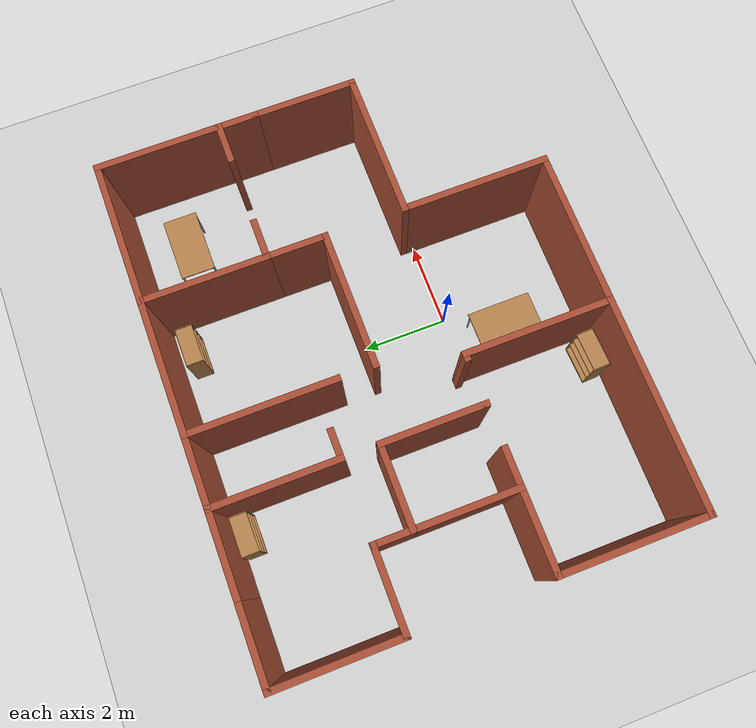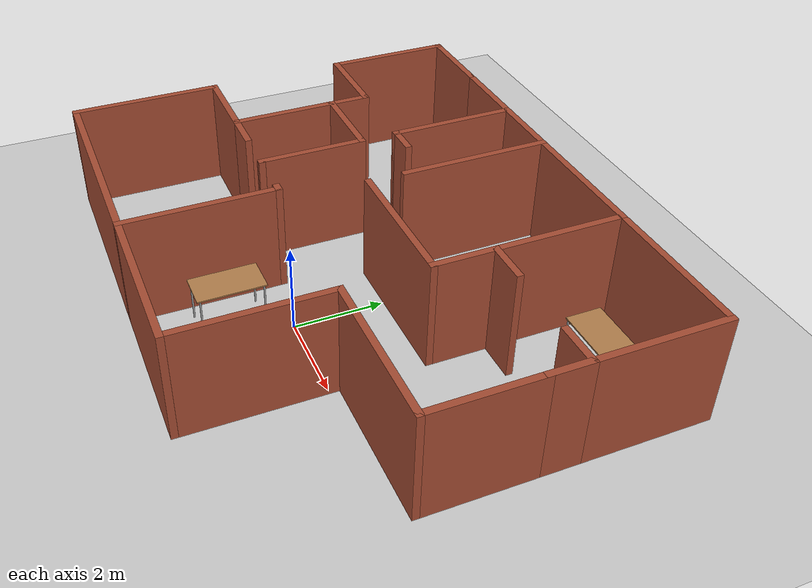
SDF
<sdf version="1.7">
 <world name="default">
  <light name="sun" type="directional">
   <pose>0 0 10 0 -0 0</pose>
   <diffuse>0.8 0.8 0.8 1</diffuse>
   <specular>0.2 0.2 0.2 1</specular>
   <attenuation>
    <range>1000</range>
    <constant>0.9</constant>
    <linear>0.01</linear>
    <quadratic>0.001</quadratic>
   </attenuation>
   <direction>-0.5 0.1 -0.9</direction>
   <spot><inner_angle>0</inner_angle><outer_angle>0</outer_angle><falloff>0</falloff></spot>
  </light>
  <model name="ground_plane">
   <static>1</static>
   <link name="link">
    <collision name="collision">
     <geometry><plane><normal>0 0 1</normal><size>100 100</size></plane></geometry>
     <surface>
      <contact><collide_bitmask>65535</collide_bitmask></contact>
      <friction><ode><mu>100</mu><mu2>50</mu2></ode></friction>
     </surface>
    </collision>
    <visual name="visual">
     <cast_shadows>0</cast_shadows>
     <geometry><plane><normal>0 0 1</normal><size>100 100</size></plane></geometry>
     <material>
      <script><uri>file://media/materials/scripts/gazebo.material</uri><name>Gazebo/Grey</name></script>
     </material>
    </visual>
   </link>
  </model>
  <gravity>0 0 -9.8</gravity>
  <magnetic_field>6e-06 2.3e-05 -4.2e-05</magnetic_field>
  <atmosphere type="adiabatic"/>
  <physics type="ode">
   <max_step_size>0.001</max_step_size>
   <real_time_factor>1</real_time_factor>
   <real_time_update_rate>1000</real_time_update_rate>
  </physics>
  <scene><ambient>0.4 0.4 0.4 1</ambient><background>0.7 0.7 0.7 1</background><shadows>1</shadows></scene>
  <spherical_coordinates>
   <surface_model>EARTH_WGS84</surface_model>
   <latitude_deg>0</latitude_deg>
   <longitude_deg>0</longitude_deg>
   <elevation>0</elevation>
   <heading_deg>0</heading_deg>
  </spherical_coordinates>
  <model name="map">
   <pose>-0.480434 1.62776 0 0 -0 0</pose>
   <link name="Wall_0">
    <collision name="Wall_0_Collision">
     <geometry><box><size>3 0.15 2.5</size></box></geometry>
     <pose>0 0 1.25 0 -0 0</pose>
    </collision>
    <visual name="Wall_0_Visual">
     <pose>0 0 1.25 0 -0 0</pose>
     <geometry><box><size>3 0.15 2.5</size></box></geometry>
     <material>
      <script><uri>file://media/materials/scripts/gazebo.material</uri><name>Gazebo/Bricks</name></script>
      <ambient>1 1 1 1</ambient>
     </material>
     <meta><layer>0</layer></meta>
    </visual>
    <pose>-5.875 3.275 0 0 -0 -1.5708</pose>
   </link>
   <link name="Wall_1">
    <collision name="Wall_1_Collision">
     <geometry><box><size>2 0.15 2.5</size></box></geometry>
     <pose>0 0 1.25 0 -0 0</pose>
    </collision>
    <visual name="Wall_1_Visual">
     <pose>0 0 1.25 0 -0 0</pose>
     <geometry><box><size>2 0.15 2.5</size></box></geometry>
     <material>
      <script><uri>file://media/materials/scripts/gazebo.material</uri><name>Gazebo/Bricks</name></script>
      <ambient>1 1 1 1</ambient>
     </material>
     <meta><layer>0</layer></meta>
    </visual>
    <pose>-4.95 1.85 0 0 -0 0</pose>
   </link>
   <link name="Wall_13">
    <collision name="Wall_13_Collision">
     <geometry><box><size>3.5 0.15 2.5</size></box></geometry>
     <pose>0 0 1.25 0 -0 0</pose>
    </collision>
    <visual name="Wall_13_Visual">
     <pose>0 0 1.25 0 -0 0</pose>
     <geometry><box><size>3.5 0.15 2.5</size></box></geometry>
     <material>
      <script><uri>file://media/materials/scripts/gazebo.material</uri><name>Gazebo/Bricks</name></script>
      <ambient>1 1 1 1</ambient>
     </material>
     <meta><layer>0</layer></meta>
    </visual>
    <pose>-0.575 3.025 0 0 -0 -1.5708</pose>
   </link>
   <link name="Wall_15">
    <collision name="Wall_15_Collision">
     <geometry><box><size>3.25 0.15 2.5</size></box></geometry>
     <pose>0 0 1.25 0 -0 0</pose>
    </collision>
    <visual name="Wall_15_Visual">
     <pose>0 0 1.25 0 -0 0</pose>
     <geometry><box><size>3.25 0.15 2.5</size></box></geometry>
     <material>
      <script><uri>file://media/materials/scripts/gazebo.material</uri><name>Gazebo/Bricks</name></script>
      <ambient>1 1 1 1</ambient>
     </material>
     <meta><layer>0</layer></meta>
    </visual>
    <pose>0.975001 4.7 0 0 -0 0</pose>
   </link>
   <link name="Wall_16">
    <collision name="Wall_16_Collision">
     <geometry><box><size>3 0.15 2.5</size></box></geometry>
     <pose>0 0 1.25 0 -0 0</pose>
    </collision>
    <visual name="Wall_16_Visual">
     <pose>0 0 1.25 0 -0 0</pose>
     <geometry><box><size>3 0.15 2.5</size></box></geometry>
     <material>
      <script><uri>file://media/materials/scripts/gazebo.material</uri><name>Gazebo/Bricks</name></script>
      <ambient>1 1 1 1</ambient>
     </material>
     <meta><layer>0</layer></meta>
    </visual>
    <pose>2.525 3.275 0 0 -0 -1.5708</pose>
   </link>
   <link name="Wall_17">
    <collision name="Wall_17_Collision">
     <geometry><box><size>1 0.15 2.5</size></box></geometry>
     <pose>0 0 1.25 0 -0 0</pose>
    </collision>
    <visual name="Wall_17_Visual">
     <pose>0 0 1.25 0 -0 0</pose>
     <geometry><box><size>1 0.15 2.5</size></box></geometry>
     <material>
      <script><uri>file://media/materials/scripts/gazebo.material</uri><name>Gazebo/Bricks</name></script>
      <ambient>1 1 1 1</ambient>
     </material>
     <meta><layer>0</layer></meta>
    </visual>
    <pose>2.95 1.85 0 0 -0 0</pose>
   </link>
   <link name="Wall_19">
    <collision name="Wall_19_Collision">
     <geometry><box><size>1.5 0.15 2.5</size></box></geometry>
     <pose>0 0 1.25 0 -0 0</pose>
    </collision>
    <visual name="Wall_19_Visual">
     <pose>0 0 1.25 0 -0 0</pose>
     <geometry><box><size>1.5 0.15 2.5</size></box></geometry>
     <material>
      <script><uri>file://media/materials/scripts/gazebo.material</uri><name>Gazebo/Bricks</name></script>
      <ambient>1 1 1 1</ambient>
     </material>
     <meta><layer>0</layer></meta>
    </visual>
    <pose>2.525 1.175 0 0 -0 -1.5708</pose>
   </link>
   <link name="Wall_2">
    <collision name="Wall_2_Collision">
     <geometry><box><size>1 0.15 2.5</size></box></geometry>
     <pose>0 0 1.25 0 -0 0</pose>
    </collision>
    <visual name="Wall_2_Visual">
     <pose>0 0 1.25 0 -0 0</pose>
     <geometry><box><size>1 0.15 2.5</size></box></geometry>
     <material>
      <script><uri>file://media/materials/scripts/gazebo.material</uri><name>Gazebo/Bricks</name></script>
      <ambient>1 1 1 1</ambient>
     </material>
     <meta><layer>0</layer></meta>
    </visual>
    <pose>-4.025 1.425 0 0 -0 -1.5708</pose>
   </link>
   <link name="Wall_20">
    <collision name="Wall_20_Collision">
     <geometry><box><size>3.25 0.15 2.5</size></box></geometry>
     <pose>0 0 1.25 0 -0 0</pose>
    </collision>
    <visual name="Wall_20_Visual">
     <pose>0 0 1.25 0 -0 0</pose>
     <geometry><box><size>3.25 0.15 2.5</size></box></geometry>
     <material>
      <script><uri>file://media/materials/scripts/gazebo.material</uri><name>Gazebo/Bricks</name></script>
      <ambient>1 1 1 1</ambient>
     </material>
     <meta><layer>0</layer></meta>
    </visual>
    <pose>0.975001 0.5 0 0 -0 3.14159</pose>
   </link>
   <link name="Wall_22">
    <collision name="Wall_22_Collision">
     <geometry><box><size>0.75 0.15 2.5</size></box></geometry>
     <pose>0 0 1.25 0 -0 0</pose>
    </collision>
    <visual name="Wall_22_Visual">
     <pose>0 0 1.25 0 -0 0</pose>
     <geometry><box><size>0.75 0.15 2.5</size></box></geometry>
     <material>
      <script><uri>file://media/materials/scripts/gazebo.material</uri><name>Gazebo/Bricks</name></script>
      <ambient>1 1 1 1</ambient>
     </material>
     <meta><layer>0</layer></meta>
    </visual>
    <pose>-1.875 1.85 0 0 -0 0</pose>
   </link>
   <link name="Wall_25">
    <collision name="Wall_25_Collision">
     <geometry><box><size>2.5 0.15 2.5</size></box></geometry>
     <pose>0 0 1.25 0 -0 0</pose>
    </collision>
    <visual name="Wall_25_Visual">
     <pose>0 0 1.25 0 -0 0</pose>
     <geometry><box><size>2.5 0.15 2.5</size></box></geometry>
     <material>
      <script><uri>file://media/materials/scripts/gazebo.material</uri><name>Gazebo/Bricks</name></script>
      <ambient>1 1 1 1</ambient>
     </material>
     <meta><layer>0</layer></meta>
    </visual>
    <pose>-4.025 -0.175 0 0 -0 -1.5708</pose>
   </link>
   <link name="Wall_26">
    <collision name="Wall_26_Collision">
     <geometry><box><size>2 0.15 2.5</size></box></geometry>
     <pose>0 0 1.25 0 -0 0</pose>
    </collision>
    <visual name="Wall_26_Visual">
     <pose>0 0 1.25 0 -0 0</pose>
     <geometry><box><size>2 0.15 2.5</size></box></geometry>
     <material>
      <script><uri>file://media/materials/scripts/gazebo.material</uri><name>Gazebo/Bricks</name></script>
      <ambient>1 1 1 1</ambient>
     </material>
     <meta><layer>0</layer></meta>
    </visual>
    <pose>-4.95 -1.35 0 0 -0 3.14159</pose>
   </link>
   <link name="Wall_27">
    <collision name="Wall_27_Collision">
     <geometry><box><size>3.5 0.15 2.5</size></box></geometry>
     <pose>0 0 1.25 0 -0 0</pose>
    </collision>
    <visual name="Wall_27_Visual">
     <pose>0 0 1.25 0 -0 0</pose>
     <geometry><box><size>3.5 0.15 2.5</size></box></geometry>
     <material>
      <script><uri>file://media/materials/scripts/gazebo.material</uri><name>Gazebo/Bricks</name></script>
      <ambient>1 1 1 1</ambient>
     </material>
     <meta><layer>0</layer></meta>
    </visual>
    <pose>-5.875 -3.025 0 0 -0 -1.5708</pose>
   </link>
   <link name="Wall_28">
    <collision name="Wall_28_Collision">
     <geometry><box><size>5 0.15 2.5</size></box></geometry>
     <pose>0 0 1.25 0 -0 0</pose>
    </collision>
    <visual name="Wall_28_Visual">
     <pose>0 0 1.25 0 -0 0</pose>
     <geometry><box><size>5 0.15 2.5</size></box></geometry>
     <material>
      <script><uri>file://media/materials/scripts/gazebo.material</uri><name>Gazebo/Bricks</name></script>
      <ambient>1 1 1 1</ambient>
     </material>
     <meta><layer>0</layer></meta>
    </visual>
    <pose>-3.45 -4.7 0 0 -0 0</pose>
   </link>
   <link name="Wall_29">
    <collision name="Wall_29_Collision">
     <geometry><box><size>3.5 0.15 2.5</size></box></geometry>
     <pose>0 0 1.25 0 -0 0</pose>
    </collision>
    <visual name="Wall_29_Visual">
     <pose>0 0 1.25 0 -0 0</pose>
     <geometry><box><size>3.5 0.15 2.5</size></box></geometry>
     <material>
      <script><uri>file://media/materials/scripts/gazebo.material</uri><name>Gazebo/Bricks</name></script>
      <ambient>1 1 1 1</ambient>
     </material>
     <meta><layer>0</layer></meta>
    </visual>
    <pose>-1.025 -3.025 0 0 -0 1.5708</pose>
   </link>
   <link name="Wall_3">
    <collision name="Wall_3_Collision">
     <geometry><box><size>2 0.15 2.5</size></box></geometry>
     <pose>0 0 1.25 0 -0 0</pose>
    </collision>
    <visual name="Wall_3_Visual">
     <pose>0 0 1.25 0 -0 0</pose>
     <geometry><box><size>2 0.15 2.5</size></box></geometry>
     <material>
      <script><uri>file://media/materials/scripts/gazebo.material</uri><name>Gazebo/Bricks</name></script>
      <ambient>1 1 1 1</ambient>
     </material>
     <meta><layer>0</layer></meta>
    </visual>
    <pose>-3.1 1 0 0 -0 0</pose>
   </link>
   <link name="Wall_31">
    <collision name="Wall_31_Collision">
     <geometry><box><size>2.5 0.15 2.5</size></box></geometry>
     <pose>0 0 1.25 0 -0 0</pose>
    </collision>
    <visual name="Wall_31_Visual">
     <pose>0 0 1.25 0 -0 0</pose>
     <geometry><box><size>2.5 0.15 2.5</size></box></geometry>
     <material>
      <script><uri>file://media/materials/scripts/gazebo.material</uri><name>Gazebo/Bricks</name></script>
      <ambient>1 1 1 1</ambient>
     </material>
     <meta><layer>0</layer></meta>
    </visual>
    <pose>-2.175 -0.175 0 0 -0 -1.5708</pose>
   </link>
   <link name="Wall_33">
    <collision name="Wall_33_Collision">
     <geometry><box><size>1 0.15 2.5</size></box></geometry>
     <pose>0 0 1.25 0 -0 0</pose>
    </collision>
    <visual name="Wall_33_Visual">
     <pose>0 0 1.25 0 -0 0</pose>
     <geometry><box><size>1 0.15 2.5</size></box></geometry>
     <material>
      <script><uri>file://media/materials/scripts/gazebo.material</uri><name>Gazebo/Bricks</name></script>
      <ambient>1 1 1 1</ambient>
     </material>
     <meta><layer>0</layer></meta>
    </visual>
    <pose>-3.6 -1.35 0 0 -0 0</pose>
   </link>
   <link name="Wall_35">
    <collision name="Wall_35_Collision">
     <geometry><box><size>0.25 0.15 2.5</size></box></geometry>
     <pose>0 0 1.25 0 -0 0</pose>
    </collision>
    <visual name="Wall_35_Visual">
     <pose>0 0 1.25 0 -0 0</pose>
     <geometry><box><size>0.25 0.15 2.5</size></box></geometry>
     <material>
      <script><uri>file://media/materials/scripts/gazebo.material</uri><name>Gazebo/Bricks</name></script>
      <ambient>1 1 1 1</ambient>
     </material>
     <meta><layer>0</layer></meta>
    </visual>
    <pose>-1.075 -1.35 0 0 -0 3.14159</pose>
   </link>
   <link name="Wall_37">
    <collision name="Wall_37_Collision">
     <geometry><box><size>0.15 0.15 2.5</size></box></geometry>
     <pose>0 0 1.25 0 -0 0</pose>
    </collision>
    <visual name="Wall_37_Visual">
     <pose>0 0 1.25 0 -0 0</pose>
     <geometry><box><size>0.15 0.15 2.5</size></box></geometry>
     <material>
      <script><uri>file://media/materials/scripts/gazebo.material</uri><name>Gazebo/Bricks</name></script>
      <ambient>1 1 1 1</ambient>
     </material>
     <meta><layer>0</layer></meta>
    </visual>
    <pose>-2.175 -1.35 0 0 -0 0</pose>
   </link>
   <link name="Wall_39">
    <collision name="Wall_39_Collision">
     <geometry><box><size>3.5 0.15 2.5</size></box></geometry>
     <pose>0 0 1.25 0 -0 0</pose>
    </collision>
    <visual name="Wall_39_Visual">
     <pose>0 0 1.25 0 -0 0</pose>
     <geometry><box><size>3.5 0.15 2.5</size></box></geometry>
     <material>
      <script><uri>file://media/materials/scripts/gazebo.material</uri><name>Gazebo/Bricks</name></script>
      <ambient>1 1 1 1</ambient>
     </material>
     <meta><layer>0</layer></meta>
    </visual>
    <pose>4.2 4.7 0 0 -0 0</pose>
   </link>
   <link name="Wall_40">
    <collision name="Wall_40_Collision">
     <geometry><box><size>3 0.15 2.5</size></box></geometry>
     <pose>0 0 1.25 0 -0 0</pose>
    </collision>
    <visual name="Wall_40_Visual">
     <pose>0 0 1.25 0 -0 0</pose>
     <geometry><box><size>3 0.15 2.5</size></box></geometry>
     <material>
      <script><uri>file://media/materials/scripts/gazebo.material</uri><name>Gazebo/Bricks</name></script>
      <ambient>1 1 1 1</ambient>
     </material>
     <meta><layer>0</layer></meta>
    </visual>
    <pose>5.875 3.275 0 0 -0 -1.5708</pose>
   </link>
   <link name="Wall_41">
    <collision name="Wall_41_Collision">
     <geometry><box><size>1 0.15 2.5</size></box></geometry>
     <pose>0 0 1.25 0 -0 0</pose>
    </collision>
    <visual name="Wall_41_Visual">
     <pose>0 0 1.25 0 -0 0</pose>
     <geometry><box><size>1 0.15 2.5</size></box></geometry>
     <material>
      <script><uri>file://media/materials/scripts/gazebo.material</uri><name>Gazebo/Bricks</name></script>
      <ambient>1 1 1 1</ambient>
     </material>
     <meta><layer>0</layer></meta>
    </visual>
    <pose>5.45 1.85 0 0 -0 3.14159</pose>
   </link>
   <link name="Wall_48">
    <collision name="Wall_48_Collision">
     <geometry><box><size>1 0.15 2.5</size></box></geometry>
     <pose>0 0 1.25 0 -0 0</pose>
    </collision>
    <visual name="Wall_48_Visual">
     <pose>0 0 1.25 0 -0 0</pose>
     <geometry><box><size>1 0.15 2.5</size></box></geometry>
     <material>
      <script><uri>file://media/materials/scripts/gazebo.material</uri><name>Gazebo/Bricks</name></script>
      <ambient>1 1 1 1</ambient>
     </material>
     <meta><layer>0</layer></meta>
    </visual>
    <pose>5.875 1.425 0 0 -0 -1.5708</pose>
   </link>
   <link name="Wall_49">
    <collision name="Wall_49_Collision">
     <geometry><box><size>2.5 0.15 2.5</size></box></geometry>
     <pose>0 0 1.25 0 -0 0</pose>
    </collision>
    <visual name="Wall_49_Visual">
     <pose>0 0 1.25 0 -0 0</pose>
     <geometry><box><size>2.5 0.15 2.5</size></box></geometry>
     <material>
      <script><uri>file://media/materials/scripts/gazebo.material</uri><name>Gazebo/Bricks</name></script>
      <ambient>1 1 1 1</ambient>
     </material>
     <meta><layer>0</layer></meta>
    </visual>
    <pose>5.875 -0.175 0 0 -0 -1.5708</pose>
   </link>
   <link name="Wall_5">
    <collision name="Wall_5_Collision">
     <geometry><box><size>2 0.15 2.5</size></box></geometry>
     <pose>0 0 1.25 0 -0 0</pose>
    </collision>
    <visual name="Wall_5_Visual">
     <pose>0 0 1.25 0 -0 0</pose>
     <geometry><box><size>2 0.15 2.5</size></box></geometry>
     <material>
      <script><uri>file://media/materials/scripts/gazebo.material</uri><name>Gazebo/Bricks</name></script>
      <ambient>1 1 1 1</ambient>
     </material>
     <meta><layer>0</layer></meta>
    </visual>
    <pose>-4.95 4.7 0 0 -0 0</pose>
   </link>
   <link name="Wall_50">
    <collision name="Wall_50_Collision">
     <geometry><box><size>3.5 0.15 2.5</size></box></geometry>
     <pose>0 0 1.25 0 -0 0</pose>
    </collision>
    <visual name="Wall_50_Visual">
     <pose>0 0 1.25 0 -0 0</pose>
     <geometry><box><size>3.5 0.15 2.5</size></box></geometry>
     <material>
      <script><uri>file://media/materials/scripts/gazebo.material</uri><name>Gazebo/Bricks</name></script>
      <ambient>1 1 1 1</ambient>
     </material>
     <meta><layer>0</layer></meta>
    </visual>
    <pose>4.2 -1.35 0 0 -0 3.14159</pose>
   </link>
   <link name="Wall_52">
    <collision name="Wall_52_Collision">
     <geometry><box><size>3.5 0.15 2.5</size></box></geometry>
     <pose>0 0 1.25 0 -0 0</pose>
    </collision>
    <visual name="Wall_52_Visual">
     <pose>0 0 1.25 0 -0 0</pose>
     <geometry><box><size>3.5 0.15 2.5</size></box></geometry>
     <material>
      <script><uri>file://media/materials/scripts/gazebo.material</uri><name>Gazebo/Bricks</name></script>
      <ambient>1 1 1 1</ambient>
     </material>
     <meta><layer>0</layer></meta>
    </visual>
    <pose>2.525 -3.025 0 0 -0 -1.5708</pose>
   </link>
   <link name="Wall_53">
    <collision name="Wall_53_Collision">
     <geometry><box><size>3.7 0.15 2.5</size></box></geometry>
     <pose>0 0 1.25 0 -0 0</pose>
    </collision>
    <visual name="Wall_53_Visual">
     <pose>0 0 1.25 0 -0 0</pose>
     <geometry><box><size>3.7 0.15 2.5</size></box></geometry>
     <material>
      <script><uri>file://media/materials/scripts/gazebo.material</uri><name>Gazebo/Bricks</name></script>
      <ambient>1 1 1 1</ambient>
     </material>
     <meta><layer>0</layer></meta>
    </visual>
    <pose>0.75 -4.7 0 0 -0 3.14159</pose>
   </link>
   <link name="Wall_6">
    <collision name="Wall_6_Collision">
     <geometry><box><size>2 0.15 2.5</size></box></geometry>
     <pose>0 0 1.25 0 -0 0</pose>
    </collision>
    <visual name="Wall_6_Visual">
     <pose>0 0 1.25 0 -0 0</pose>
     <geometry><box><size>2 0.15 2.5</size></box></geometry>
     <material>
      <script><uri>file://media/materials/scripts/gazebo.material</uri><name>Gazebo/Bricks</name></script>
      <ambient>1 1 1 1</ambient>
     </material>
     <meta><layer>0</layer></meta>
    </visual>
    <pose>-3.1 4.7 0 0 -0 0</pose>
   </link>
   <link name="Wall_7">
    <collision name="Wall_7_Collision">
     <geometry><box><size>3 0.15 2.5</size></box></geometry>
     <pose>0 0 1.25 0 -0 0</pose>
    </collision>
    <visual name="Wall_7_Visual">
     <pose>0 0 1.25 0 -0 0</pose>
     <geometry><box><size>3 0.15 2.5</size></box></geometry>
     <material>
      <script><uri>file://media/materials/scripts/gazebo.material</uri><name>Gazebo/Bricks</name></script>
      <ambient>1 1 1 1</ambient>
     </material>
     <meta><layer>0</layer></meta>
    </visual>
    <pose>-2.175 3.275 0 0 -0 -1.5708</pose>
   </link>
   <link name="Wall_9">
    <collision name="Wall_9_Collision">
     <geometry><box><size>1.75 0.15 2.5</size></box></geometry>
     <pose>0 0 1.25 0 -0 0</pose>
    </collision>
    <visual name="Wall_9_Visual">
     <pose>0 0 1.25 0 -0 0</pose>
     <geometry><box><size>1.75 0.15 2.5</size></box></geometry>
     <material>
      <script><uri>file://media/materials/scripts/gazebo.material</uri><name>Gazebo/Bricks</name></script>
      <ambient>1 1 1 1</ambient>
     </material>
     <meta><layer>0</layer></meta>
    </visual>
    <pose>-1.375 4.7 0 0 -0 0</pose>
   </link>
   <static>1</static>
  </model>
  <model name="bookshelf">
   <static>1</static>
   <link name="link">
    <inertial><mass>1</mass></inertial>
    <collision name="back">
     <pose>0 0.005 0.6 0 -0 0</pose>
     <geometry><box><size>0.9 0.01 1.2</size></box></geometry>
    </collision>
    <visual name="visual1">
     <pose>0 0.005 0.6 0 -0 0</pose>
     <geometry><box><size>0.9 0.01 1.2</size></box></geometry>
     <material>
      <script><uri>file://media/materials/scripts/gazebo.material</uri><name>Gazebo/Wood</name></script>
     </material>
    </visual>
    <collision name="left_side">
     <pose>0.45 -0.195 0.6 0 -0 0</pose>
     <geometry><box><size>0.02 0.4 1.2</size></box></geometry>
    </collision>
    <visual name="visual2">
     <pose>0.45 -0.195 0.6 0 -0 0</pose>
     <geometry><box><size>0.02 0.4 1.2</size></box></geometry>
     <material>
      <script><uri>file://media/materials/scripts/gazebo.material</uri><name>Gazebo/Wood</name></script>
     </material>
    </visual>
    <collision name="right_side">
     <pose>-0.45 -0.195 0.6 0 -0 0</pose>
     <geometry><box><size>0.02 0.4 1.2</size></box></geometry>
    </collision>
    <visual name="visual3">
     <pose>-0.45 -0.195 0.6 0 -0 0</pose>
     <geometry><box><size>0.02 0.4 1.2</size></box></geometry>
     <material>
      <script><uri>file://media/materials/scripts/gazebo.material</uri><name>Gazebo/Wood</name></script>
     </material>
    </visual>
    <collision name="bottom">
     <pose>0 -0.195 0.03 0 -0 0</pose>
     <geometry><box><size>0.88 0.4 0.06</size></box></geometry>
    </collision>
    <visual name="visual4">
     <pose>0 -0.195 0.03 0 -0 0</pose>
     <geometry><box><size>0.88 0.4 0.06</size></box></geometry>
     <material>
      <script><uri>file://media/materials/scripts/gazebo.material</uri><name>Gazebo/Wood</name></script>
     </material>
    </visual>
    <collision name="top">
     <pose>0 -0.195 1.19 0 -0 0</pose>
     <geometry><box><size>0.88 0.4 0.02</size></box></geometry>
    </collision>
    <visual name="visual5">
     <pose>0 -0.195 1.19 0 -0 0</pose>
     <geometry><box><size>0.88 0.4 0.02</size></box></geometry>
     <material>
      <script><uri>file://media/materials/scripts/gazebo.material</uri><name>Gazebo/Wood</name></script>
     </material>
    </visual>
    <collision name="low_shelf">
     <pose>0 -0.195 0.43 0 -0 0</pose>
     <geometry><box><size>0.88 0.4 0.02</size></box></geometry>
    </collision>
    <visual name="visual6">
     <pose>0 -0.195 0.43 0 -0 0</pose>
     <geometry><box><size>0.88 0.4 0.02</size></box></geometry>
     <material>
      <script><uri>file://media/materials/scripts/gazebo.material</uri><name>Gazebo/Wood</name></script>
     </material>
    </visual>
    <collision name="high_shelf">
     <pose>0 -0.195 0.8 0 -0 0</pose>
     <geometry><box><size>0.88 0.4 0.02</size></box></geometry>
    </collision>
    <visual name="visual7">
     <pose>0 -0.195 0.8 0 -0 0</pose>
     <geometry><box><size>0.88 0.4 0.02</size></box></geometry>
     <material>
      <script><uri>file://media/materials/scripts/gazebo.material</uri><name>Gazebo/Wood</name></script>
     </material>
    </visual>
   </link>
   <pose>-3.2528 6.18738 0 0 -0 0</pose>
  </model>
  <model name="bookshelf_0">
   <static>1</static>
   <link name="link">
    <inertial><mass>1</mass></inertial>
    <collision name="back">
     <pose>0 0.005 0.6 0 -0 0</pose>
     <geometry><box><size>0.9 0.01 1.2</size></box></geometry>
    </collision>
    <visual name="visual1">
     <pose>0 0.005 0.6 0 -0 0</pose>
     <geometry><box><size>0.9 0.01 1.2</size></box></geometry>
     <material>
      <script><uri>file://media/materials/scripts/gazebo.material</uri><name>Gazebo/Wood</name></script>
     </material>
    </visual>
    <collision name="left_side">
     <pose>0.45 -0.195 0.6 0 -0 0</pose>
     <geometry><box><size>0.02 0.4 1.2</size></box></geometry>
    </collision>
    <visual name="visual2">
     <pose>0.45 -0.195 0.6 0 -0 0</pose>
     <geometry><box><size>0.02 0.4 1.2</size></box></geometry>
     <material>
      <script><uri>file://media/materials/scripts/gazebo.material</uri><name>Gazebo/Wood</name></script>
     </material>
    </visual>
    <collision name="right_side">
     <pose>-0.45 -0.195 0.6 0 -0 0</pose>
     <geometry><box><size>0.02 0.4 1.2</size></box></geometry>
    </collision>
    <visual name="visual3">
     <pose>-0.45 -0.195 0.6 0 -0 0</pose>
     <geometry><box><size>0.02 0.4 1.2</size></box></geometry>
     <material>
      <script><uri>file://media/materials/scripts/gazebo.material</uri><name>Gazebo/Wood</name></script>
     </material>
    </visual>
    <collision name="bottom">
     <pose>0 -0.195 0.03 0 -0 0</pose>
     <geometry><box><size>0.88 0.4 0.06</size></box></geometry>
    </collision>
    <visual name="visual4">
     <pose>0 -0.195 0.03 0 -0 0</pose>
     <geometry><box><size>0.88 0.4 0.06</size></box></geometry>
     <material>
      <script><uri>file://media/materials/scripts/gazebo.material</uri><name>Gazebo/Wood</name></script>
     </material>
    </visual>
    <collision name="top">
     <pose>0 -0.195 1.19 0 -0 0</pose>
     <geometry><box><size>0.88 0.4 0.02</size></box></geometry>
    </collision>
    <visual name="visual5">
     <pose>0 -0.195 1.19 0 -0 0</pose>
     <geometry><box><size>0.88 0.4 0.02</size></box></geometry>
     <material>
      <script><uri>file://media/materials/scripts/gazebo.material</uri><name>Gazebo/Wood</name></script>
     </material>
    </visual>
    <collision name="low_shelf">
     <pose>0 -0.195 0.43 0 -0 0</pose>
     <geometry><box><size>0.88 0.4 0.02</size></box></geometry>
    </collision>
    <visual name="visual6">
     <pose>0 -0.195 0.43 0 -0 0</pose>
     <geometry><box><size>0.88 0.4 0.02</size></box></geometry>
     <material>
      <script><uri>file://media/materials/scripts/gazebo.material</uri><name>Gazebo/Wood</name></script>
     </material>
    </visual>
    <collision name="high_shelf">
     <pose>0 -0.195 0.8 0 -0 0</pose>
     <geometry><box><size>0.88 0.4 0.02</size></box></geometry>
    </collision>
    <visual name="visual7">
     <pose>0 -0.195 0.8 0 -0 0</pose>
     <geometry><box><size>0.88 0.4 0.02</size></box></geometry>
     <material>
      <script><uri>file://media/materials/scripts/gazebo.material</uri><name>Gazebo/Wood</name></script>
     </material>
    </visual>
   </link>
   <pose>-2.14353 -2.90782 0 0 0 -3.10663</pose>
  </model>
  <model name="table_0">
   <static>1</static>
   <link name="link">
    <collision name="surface">
     <pose>0 0 1 0 -0 0</pose>
     <geometry><box><size>1.5 0.8 0.03</size></box></geometry>
     <surface><friction><ode><mu>0.6</mu><mu2>0.6</mu2></ode></friction></surface>
    </collision>
    <visual name="visual1">
     <pose>0 0 1 0 -0 0</pose>
     <geometry><box><size>1.5 0.8 0.03</size></box></geometry>
     <material>
      <script><uri>file://media/materials/scripts/gazebo.material</uri><name>Gazebo/Wood</name></script>
     </material>
    </visual>
    <collision name="front_left_leg">
     <pose>0.68 0.38 0.5 0 -0 0</pose>
     <geometry><cylinder><radius>0.02</radius><length>1</length></cylinder></geometry>
    </collision>
    <visual name="front_left_leg">
     <pose>0.68 0.38 0.5 0 -0 0</pose>
     <geometry><cylinder><radius>0.02</radius><length>1</length></cylinder></geometry>
     <material>
      <script><uri>file://media/materials/scripts/gazebo.material</uri><name>Gazebo/Grey</name></script>
     </material>
    </visual>
    <collision name="front_right_leg">
     <pose>0.68 -0.38 0.5 0 -0 0</pose>
     <geometry><cylinder><radius>0.02</radius><length>1</length></cylinder></geometry>
    </collision>
    <visual name="front_right_leg">
     <pose>0.68 -0.38 0.5 0 -0 0</pose>
     <geometry><cylinder><radius>0.02</radius><length>1</length></cylinder></geometry>
     <material>
      <script><uri>file://media/materials/scripts/gazebo.material</uri><name>Gazebo/Grey</name></script>
     </material>
    </visual>
    <collision name="back_right_leg">
     <pose>-0.68 -0.38 0.5 0 -0 0</pose>
     <geometry><cylinder><radius>0.02</radius><length>1</length></cylinder></geometry>
    </collision>
    <visual name="back_right_leg">
     <pose>-0.68 -0.38 0.5 0 -0 0</pose>
     <geometry><cylinder><radius>0.02</radius><length>1</length></cylinder></geometry>
     <material>
      <script><uri>file://media/materials/scripts/gazebo.material</uri><name>Gazebo/Grey</name></script>
     </material>
    </visual>
    <collision name="back_left_leg">
     <pose>-0.68 0.38 0.5 0 -0 0</pose>
     <geometry><cylinder><radius>0.02</radius><length>1</length></cylinder></geometry>
    </collision>
    <visual name="back_left_leg">
     <pose>-0.68 0.38 0.5 0 -0 0</pose>
     <geometry><cylinder><radius>0.02</radius><length>1</length></cylinder></geometry>
     <material>
      <script><uri>file://media/materials/scripts/gazebo.material</uri><name>Gazebo/Grey</name></script>
     </material>
    </visual>
   </link>
   <pose>3.6192 5.11162 0 0 -0 0</pose>
  </model>
  <model name="table">
   <static>1</static>
   <link name="link">
    <collision name="surface">
     <pose>0 0 1 0 -0 0</pose>
     <geometry><box><size>1.5 0.8 0.03</size></box></geometry>
     <surface><friction><ode><mu>0.6</mu><mu2>0.6</mu2></ode></friction></surface>
    </collision>
    <visual name="visual1">
     <pose>0 0 1 0 -0 0</pose>
     <geometry><box><size>1.5 0.8 0.03</size></box></geometry>
     <material>
      <script><uri>file://media/materials/scripts/gazebo.material</uri><name>Gazebo/Wood</name></script>
     </material>
    </visual>
    <collision name="front_left_leg">
     <pose>0.68 0.38 0.5 0 -0 0</pose>
     <geometry><cylinder><radius>0.02</radius><length>1</length></cylinder></geometry>
    </collision>
    <visual name="front_left_leg">
     <pose>0.68 0.38 0.5 0 -0 0</pose>
     <geometry><cylinder><radius>0.02</radius><length>1</length></cylinder></geometry>
     <material>
      <script><uri>file://media/materials/scripts/gazebo.material</uri><name>Gazebo/Grey</name></script>
     </material>
    </visual>
    <collision name="front_right_leg">
     <pose>0.68 -0.38 0.5 0 -0 0</pose>
     <geometry><cylinder><radius>0.02</radius><length>1</length></cylinder></geometry>
    </collision>
    <visual name="front_right_leg">
     <pose>0.68 -0.38 0.5 0 -0 0</pose>
     <geometry><cylinder><radius>0.02</radius><length>1</length></cylinder></geometry>
     <material>
      <script><uri>file://media/materials/scripts/gazebo.material</uri><name>Gazebo/Grey</name></script>
     </material>
    </visual>
    <collision name="back_right_leg">
     <pose>-0.68 -0.38 0.5 0 -0 0</pose>
     <geometry><cylinder><radius>0.02</radius><length>1</length></cylinder></geometry>
    </collision>
    <visual name="back_right_leg">
     <pose>-0.68 -0.38 0.5 0 -0 0</pose>
     <geometry><cylinder><radius>0.02</radius><length>1</length></cylinder></geometry>
     <material>
      <script><uri>file://media/materials/scripts/gazebo.material</uri><name>Gazebo/Grey</name></script>
     </material>
    </visual>
    <collision name="back_left_leg">
     <pose>-0.68 0.38 0.5 0 -0 0</pose>
     <geometry><cylinder><radius>0.02</radius><length>1</length></cylinder></geometry>
    </collision>
    <visual name="back_left_leg">
     <pose>-0.68 0.38 0.5 0 -0 0</pose>
     <geometry><cylinder><radius>0.02</radius><length>1</length></cylinder></geometry>
     <material>
      <script><uri>file://media/materials/scripts/gazebo.material</uri><name>Gazebo/Grey</name></script>
     </material>
    </visual>
   </link>
   <pose>-0.724735 -1.1656 0 0 0 -1.56402</pose>
  </model>
  <model name="bookshelf_1">
   <static>1</static>
   <link name="link">
    <inertial><mass>1</mass></inertial>
    <collision name="back">
     <pose>0 0.005 0.6 0 -0 0</pose>
     <geometry><box><size>0.9 0.01 1.2</size></box></geometry>
    </collision>
    <visual name="visual1">
     <pose>0 0.005 0.6 0 -0 0</pose>
     <geometry><box><size>0.9 0.01 1.2</size></box></geometry>
     <material>
      <script><uri>file://media/materials/scripts/gazebo.material</uri><name>Gazebo/Wood</name></script>
     </material>
    </visual>
    <collision name="left_side">
     <pose>0.45 -0.195 0.6 0 -0 0</pose>
     <geometry><box><size>0.02 0.4 1.2</size></box></geometry>
    </collision>
    <visual name="visual2">
     <pose>0.45 -0.195 0.6 0 -0 0</pose>
     <geometry><box><size>0.02 0.4 1.2</size></box></geometry>
     <material>
      <script><uri>file://media/materials/scripts/gazebo.material</uri><name>Gazebo/Wood</name></script>
     </material>
    </visual>
    <collision name="right_side">
     <pose>-0.45 -0.195 0.6 0 -0 0</pose>
     <geometry><box><size>0.02 0.4 1.2</size></box></geometry>
    </collision>
    <visual name="visual3">
     <pose>-0.45 -0.195 0.6 0 -0 0</pose>
     <geometry><box><size>0.02 0.4 1.2</size></box></geometry>
     <material>
      <script><uri>file://media/materials/scripts/gazebo.material</uri><name>Gazebo/Wood</name></script>
     </material>
    </visual>
    <collision name="bottom">
     <pose>0 -0.195 0.03 0 -0 0</pose>
     <geometry><box><size>0.88 0.4 0.06</size></box></geometry>
    </collision>
    <visual name="visual4">
     <pose>0 -0.195 0.03 0 -0 0</pose>
     <geometry><box><size>0.88 0.4 0.06</size></box></geometry>
     <material>
      <script><uri>file://media/materials/scripts/gazebo.material</uri><name>Gazebo/Wood</name></script>
     </material>
    </visual>
    <collision name="top">
     <pose>0 -0.195 1.19 0 -0 0</pose>
     <geometry><box><size>0.88 0.4 0.02</size></box></geometry>
    </collision>
    <visual name="visual5">
     <pose>0 -0.195 1.19 0 -0 0</pose>
     <geometry><box><size>0.88 0.4 0.02</size></box></geometry>
     <material>
      <script><uri>file://media/materials/scripts/gazebo.material</uri><name>Gazebo/Wood</name></script>
     </material>
    </visual>
    <collision name="low_shelf">
     <pose>0 -0.195 0.43 0 -0 0</pose>
     <geometry><box><size>0.88 0.4 0.02</size></box></geometry>
    </collision>
    <visual name="visual6">
     <pose>0 -0.195 0.43 0 -0 0</pose>
     <geometry><box><size>0.88 0.4 0.02</size></box></geometry>
     <material>
      <script><uri>file://media/materials/scripts/gazebo.material</uri><name>Gazebo/Wood</name></script>
     </material>
    </visual>
    <collision name="high_shelf">
     <pose>0 -0.195 0.8 0 -0 0</pose>
     <geometry><box><size>0.88 0.4 0.02</size></box></geometry>
    </collision>
    <visual name="visual7">
     <pose>0 -0.195 0.8 0 -0 0</pose>
     <geometry><box><size>0.88 0.4 0.02</size></box></geometry>
     <material>
      <script><uri>file://media/materials/scripts/gazebo.material</uri><name>Gazebo/Wood</name></script>
     </material>
    </visual>
   </link>
   <pose>1.19887 6.02006 0 0 -0 0</pose>
  </model>
 </world>
</sdf>
